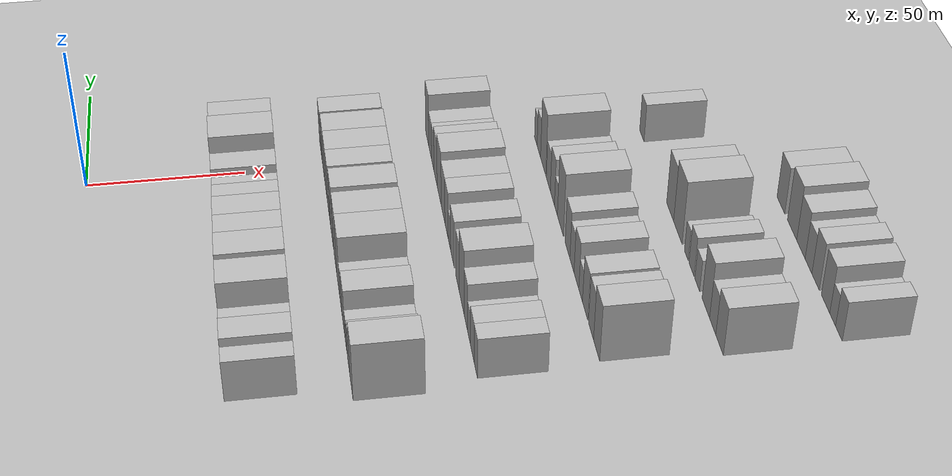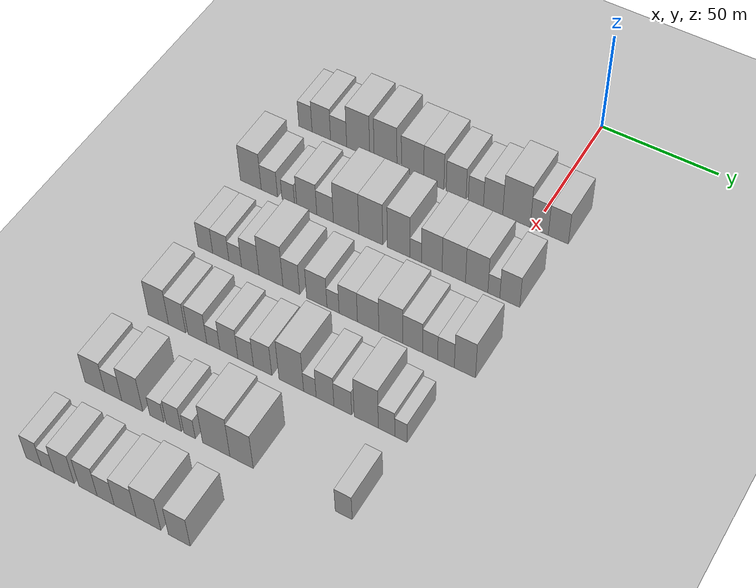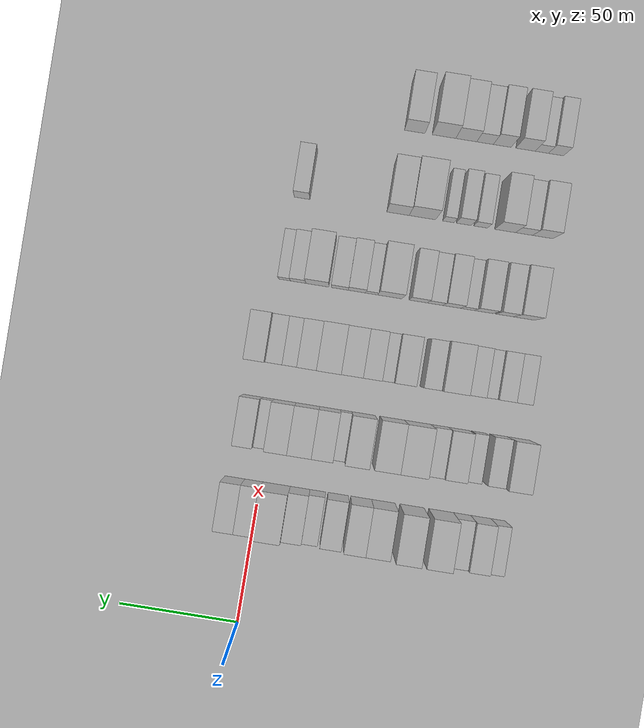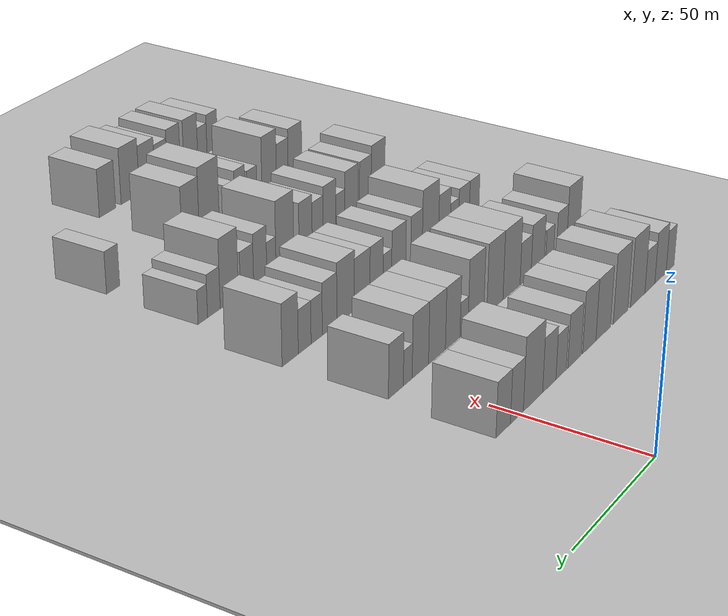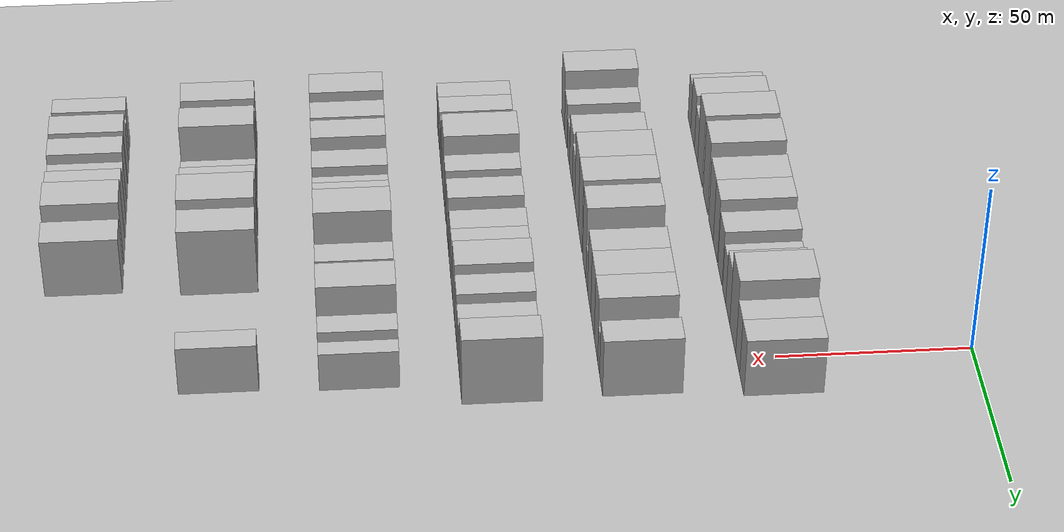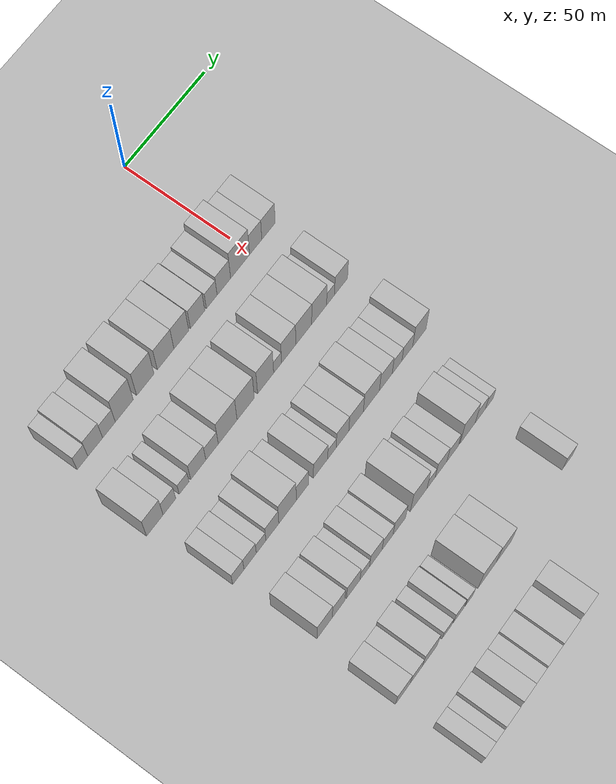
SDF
<sdf version="1.6">
 <world name="default">
  <include><name>ground_plane_1</name><uri>model://HANNAS_ground_plane</uri></include>
  <include>
   <name>ground_plane_2</name>
   <uri>model://HANNAS_ground_plane</uri>
   <pose>100 0 0  0 0 0</pose>
  </include>
  <model name="building_51">
   <static>1</static>
   <pose>50.0000 -100.9909 0 0.000000 0.000000 0.000000</pose>
   <link name="link">
    <pose>0 0 7.50 0 0 0</pose>
    <collision name="collision"><geometry><box><size>20.0000 6.1518 15.0000</size></box></geometry></collision>
    <visual name="visual">
     <cast_shadows>0</cast_shadows>
     <geometry><box><size>20.0000 6.1518 15.0000</size></box></geometry>
     <material>
      <script>
       <uri>model://HANNAS_wall/materials/scripts</uri>
       <uri>model://HANNAS_wall/materials/textures</uri>
       <name>vrc/HANNAS_wall</name>
      </script>
     </material>
    </visual>
   </link>
  </model>
  <model name="building_52">
   <static>1</static>
   <pose>50.0000 -93.6376 0 0.000000 0.000000 0.000000</pose>
   <link name="link">
    <pose>0 0 9.00 0 0 0</pose>
    <collision name="collision"><geometry><box><size>20.0000 8.5547 18.0000</size></box></geometry></collision>
    <visual name="visual">
     <cast_shadows>0</cast_shadows>
     <geometry><box><size>20.0000 8.5547 18.0000</size></box></geometry>
     <material>
      <script>
       <uri>model://HANNAS_wall/materials/scripts</uri>
       <uri>model://HANNAS_wall/materials/textures</uri>
       <name>vrc/HANNAS_wall</name>
      </script>
     </material>
    </visual>
   </link>
  </model>
  <model name="building_53">
   <static>1</static>
   <pose>50.0000 -85.6595 0 0.000000 0.000000 0.000000</pose>
   <link name="link">
    <pose>0 0 7.50 0 0 0</pose>
    <collision name="collision"><geometry><box><size>20.0000 7.4015 15.0000</size></box></geometry></collision>
    <visual name="visual">
     <cast_shadows>0</cast_shadows>
     <geometry><box><size>20.0000 7.4015 15.0000</size></box></geometry>
     <material>
      <script>
       <uri>model://HANNAS_wall/materials/scripts</uri>
       <uri>model://HANNAS_wall/materials/textures</uri>
       <name>vrc/HANNAS_wall</name>
      </script>
     </material>
    </visual>
   </link>
  </model>
  <model name="building_54">
   <static>1</static>
   <pose>50.0000 -76.7090 0 0.000000 0.000000 0.000000</pose>
   <link name="link">
    <pose>0 0 12.00 0 0 0</pose>
    <collision name="collision"><geometry><box><size>20.0000 10.4997 24.0000</size></box></geometry></collision>
    <visual name="visual">
     <cast_shadows>0</cast_shadows>
     <geometry><box><size>20.0000 10.4997 24.0000</size></box></geometry>
     <material>
      <script>
       <uri>model://HANNAS_wall/materials/scripts</uri>
       <uri>model://HANNAS_wall/materials/textures</uri>
       <name>vrc/HANNAS_wall</name>
      </script>
     </material>
    </visual>
   </link>
  </model>
  <model name="building_55">
   <static>1</static>
   <pose>50.0000 -64.3393 0 0.000000 0.000000 0.000000</pose>
   <link name="link">
    <pose>0 0 12.00 0 0 0</pose>
    <collision name="collision"><geometry><box><size>20.0000 10.2397 24.0000</size></box></geometry></collision>
    <visual name="visual">
     <cast_shadows>0</cast_shadows>
     <geometry><box><size>20.0000 10.2397 24.0000</size></box></geometry>
     <material>
      <script>
       <uri>model://HANNAS_wall/materials/scripts</uri>
       <uri>model://HANNAS_wall/materials/textures</uri>
       <name>vrc/HANNAS_wall</name>
      </script>
     </material>
    </visual>
   </link>
  </model>
  <model name="building_56">
   <static>1</static>
   <pose>50.0000 -52.2543 0 0.000000 0.000000 0.000000</pose>
   <link name="link">
    <pose>0 0 10.50 0 0 0</pose>
    <collision name="collision"><geometry><box><size>20.0000 9.9302 21.0000</size></box></geometry></collision>
    <visual name="visual">
     <cast_shadows>0</cast_shadows>
     <geometry><box><size>20.0000 9.9302 21.0000</size></box></geometry>
     <material>
      <script>
       <uri>model://HANNAS_wall/materials/scripts</uri>
       <uri>model://HANNAS_wall/materials/textures</uri>
       <name>vrc/HANNAS_wall</name>
      </script>
     </material>
    </visual>
   </link>
  </model>
  <model name="building_57">
   <static>1</static>
   <pose>50.0000 -42.8495 0 0.000000 0.000000 0.000000</pose>
   <link name="link">
    <pose>0 0 10.50 0 0 0</pose>
    <collision name="collision"><geometry><box><size>20.0000 8.8794 21.0000</size></box></geometry></collision>
    <visual name="visual">
     <cast_shadows>0</cast_shadows>
     <geometry><box><size>20.0000 8.8794 21.0000</size></box></geometry>
     <material>
      <script>
       <uri>model://HANNAS_wall/materials/scripts</uri>
       <uri>model://HANNAS_wall/materials/textures</uri>
       <name>vrc/HANNAS_wall</name>
      </script>
     </material>
    </visual>
   </link>
  </model>
  <model name="building_58">
   <static>1</static>
   <pose>50.0000 -33.0597 0 0.000000 0.000000 0.000000</pose>
   <link name="link">
    <pose>0 0 9.00 0 0 0</pose>
    <collision name="collision"><geometry><box><size>20.0000 8.7003 18.0000</size></box></geometry></collision>
    <visual name="visual">
     <cast_shadows>0</cast_shadows>
     <geometry><box><size>20.0000 8.7003 18.0000</size></box></geometry>
     <material>
      <script>
       <uri>model://HANNAS_wall/materials/scripts</uri>
       <uri>model://HANNAS_wall/materials/textures</uri>
       <name>vrc/HANNAS_wall</name>
      </script>
     </material>
    </visual>
   </link>
  </model>
  <model name="building_59">
   <static>1</static>
   <pose>50.0000 -24.4316 0 0.000000 0.000000 0.000000</pose>
   <link name="link">
    <pose>0 0 7.50 0 0 0</pose>
    <collision name="collision"><geometry><box><size>20.0000 6.5559 15.0000</size></box></geometry></collision>
    <visual name="visual">
     <cast_shadows>0</cast_shadows>
     <geometry><box><size>20.0000 6.5559 15.0000</size></box></geometry>
     <material>
      <script>
       <uri>model://HANNAS_wall/materials/scripts</uri>
       <uri>model://HANNAS_wall/materials/textures</uri>
       <name>vrc/HANNAS_wall</name>
      </script>
     </material>
    </visual>
   </link>
  </model>
  <model name="building_60">
   <static>1</static>
   <pose>50.0000 -17.0000 0 0.000000 0.000000 0.000000</pose>
   <link name="link">
    <pose>0 0 9.00 0 0 0</pose>
    <collision name="collision"><geometry><box><size>20.0000 8.3073 18.0000</size></box></geometry></collision>
    <visual name="visual">
     <cast_shadows>0</cast_shadows>
     <geometry><box><size>20.0000 8.3073 18.0000</size></box></geometry>
     <material>
      <script>
       <uri>model://HANNAS_wall/materials/scripts</uri>
       <uri>model://HANNAS_wall/materials/textures</uri>
       <name>vrc/HANNAS_wall</name>
      </script>
     </material>
    </visual>
   </link>
  </model>
  <model name="building_61">
   <static>1</static>
   <pose>50.0000 -6.9831 0 0.000000 0.000000 0.000000</pose>
   <link name="link">
    <pose>0 0 12.00 0 0 0</pose>
    <collision name="collision"><geometry><box><size>20.0000 11.7265 24.0000</size></box></geometry></collision>
    <visual name="visual">
     <cast_shadows>0</cast_shadows>
     <geometry><box><size>20.0000 11.7265 24.0000</size></box></geometry>
     <material>
      <script>
       <uri>model://HANNAS_wall/materials/scripts</uri>
       <uri>model://HANNAS_wall/materials/textures</uri>
       <name>vrc/HANNAS_wall</name>
      </script>
     </material>
    </visual>
   </link>
  </model>
  <model name="building_62">
   <static>1</static>
   <pose>50.0000 2.6950 0 0.000000 0.000000 0.000000</pose>
   <link name="link">
    <pose>0 0 9.00 0 0 0</pose>
    <collision name="collision"><geometry><box><size>20.0000 7.6295 18.0000</size></box></geometry></collision>
    <visual name="visual">
     <cast_shadows>0</cast_shadows>
     <geometry><box><size>20.0000 7.6295 18.0000</size></box></geometry>
     <material>
      <script>
       <uri>model://HANNAS_wall/materials/scripts</uri>
       <uri>model://HANNAS_wall/materials/textures</uri>
       <name>vrc/HANNAS_wall</name>
      </script>
     </material>
    </visual>
   </link>
  </model>
  <model name="building_63">
   <static>1</static>
   <pose>50.0000 10.7065 0 0.000000 0.000000 0.000000</pose>
   <link name="link">
    <pose>0 0 9.00 0 0 0</pose>
    <collision name="collision"><geometry><box><size>20.0000 8.3934 18.0000</size></box></geometry></collision>
    <visual name="visual">
     <cast_shadows>0</cast_shadows>
     <geometry><box><size>20.0000 8.3934 18.0000</size></box></geometry>
     <material>
      <script>
       <uri>model://HANNAS_wall/materials/scripts</uri>
       <uri>model://HANNAS_wall/materials/textures</uri>
       <name>vrc/HANNAS_wall</name>
      </script>
     </material>
    </visual>
   </link>
  </model>
  <model name="building_169">
   <static>1</static>
   <pose>85.0000 -103.8853 0 0.000000 0.000000 0.000000</pose>
   <link name="link">
    <pose>0 0 10.50 0 0 0</pose>
    <collision name="collision"><geometry><box><size>20.0000 9.5341 21.0000</size></box></geometry></collision>
    <visual name="visual">
     <cast_shadows>0</cast_shadows>
     <geometry><box><size>20.0000 9.5341 21.0000</size></box></geometry>
     <material>
      <script>
       <uri>model://HANNAS_wall/materials/scripts</uri>
       <uri>model://HANNAS_wall/materials/textures</uri>
       <name>vrc/HANNAS_wall</name>
      </script>
     </material>
    </visual>
   </link>
  </model>
  <model name="building_170">
   <static>1</static>
   <pose>85.0000 -95.4093 0 0.000000 0.000000 0.000000</pose>
   <link name="link">
    <pose>0 0 7.50 0 0 0</pose>
    <collision name="collision"><geometry><box><size>20.0000 7.4179 15.0000</size></box></geometry></collision>
    <visual name="visual">
     <cast_shadows>0</cast_shadows>
     <geometry><box><size>20.0000 7.4179 15.0000</size></box></geometry>
     <material>
      <script>
       <uri>model://HANNAS_wall/materials/scripts</uri>
       <uri>model://HANNAS_wall/materials/textures</uri>
       <name>vrc/HANNAS_wall</name>
      </script>
     </material>
    </visual>
   </link>
  </model>
  <model name="building_171">
   <static>1</static>
   <pose>85.0000 -86.8572 0 0.000000 0.000000 0.000000</pose>
   <link name="link">
    <pose>0 0 6.00 0 0 0</pose>
    <collision name="collision"><geometry><box><size>20.0000 5.6863 12.0000</size></box></geometry></collision>
    <visual name="visual">
     <cast_shadows>0</cast_shadows>
     <geometry><box><size>20.0000 5.6863 12.0000</size></box></geometry>
     <material>
      <script>
       <uri>model://HANNAS_wall/materials/scripts</uri>
       <uri>model://HANNAS_wall/materials/textures</uri>
       <name>vrc/HANNAS_wall</name>
      </script>
     </material>
    </visual>
   </link>
  </model>
  <model name="building_172">
   <static>1</static>
   <pose>85.0000 -78.5305 0 0.000000 0.000000 0.000000</pose>
   <link name="link">
    <pose>0 0 9.00 0 0 0</pose>
    <collision name="collision"><geometry><box><size>20.0000 8.9672 18.0000</size></box></geometry></collision>
    <visual name="visual">
     <cast_shadows>0</cast_shadows>
     <geometry><box><size>20.0000 8.9672 18.0000</size></box></geometry>
     <material>
      <script>
       <uri>model://HANNAS_wall/materials/scripts</uri>
       <uri>model://HANNAS_wall/materials/textures</uri>
       <name>vrc/HANNAS_wall</name>
      </script>
     </material>
    </visual>
   </link>
  </model>
  <model name="building_173">
   <static>1</static>
   <pose>85.0000 -70.3578 0 0.000000 0.000000 0.000000</pose>
   <link name="link">
    <pose>0 0 7.50 0 0 0</pose>
    <collision name="collision"><geometry><box><size>20.0000 7.3783 15.0000</size></box></geometry></collision>
    <visual name="visual">
     <cast_shadows>0</cast_shadows>
     <geometry><box><size>20.0000 7.3783 15.0000</size></box></geometry>
     <material>
      <script>
       <uri>model://HANNAS_wall/materials/scripts</uri>
       <uri>model://HANNAS_wall/materials/textures</uri>
       <name>vrc/HANNAS_wall</name>
      </script>
     </material>
    </visual>
   </link>
  </model>
  <model name="building_174">
   <static>1</static>
   <pose>85.0000 -61.0500 0 0.000000 0.000000 0.000000</pose>
   <link name="link">
    <pose>0 0 12.00 0 0 0</pose>
    <collision name="collision"><geometry><box><size>20.0000 11.2374 24.0000</size></box></geometry></collision>
    <visual name="visual">
     <cast_shadows>0</cast_shadows>
     <geometry><box><size>20.0000 11.2374 24.0000</size></box></geometry>
     <material>
      <script>
       <uri>model://HANNAS_wall/materials/scripts</uri>
       <uri>model://HANNAS_wall/materials/textures</uri>
       <name>vrc/HANNAS_wall</name>
      </script>
     </material>
    </visual>
   </link>
  </model>
  <model name="building_175">
   <static>1</static>
   <pose>85.0000 -50.2451 0 0.000000 0.000000 0.000000</pose>
   <link name="link">
    <pose>0 0 12.00 0 0 0</pose>
    <collision name="collision"><geometry><box><size>20.0000 10.3722 24.0000</size></box></geometry></collision>
    <visual name="visual">
     <cast_shadows>0</cast_shadows>
     <geometry><box><size>20.0000 10.3722 24.0000</size></box></geometry>
     <material>
      <script>
       <uri>model://HANNAS_wall/materials/scripts</uri>
       <uri>model://HANNAS_wall/materials/textures</uri>
       <name>vrc/HANNAS_wall</name>
      </script>
     </material>
    </visual>
   </link>
  </model>
  <model name="building_176">
   <static>1</static>
   <pose>85.0000 -38.1732 0 0.000000 0.000000 0.000000</pose>
   <link name="link">
    <pose>0 0 12.00 0 0 0</pose>
    <collision name="collision"><geometry><box><size>20.0000 9.7717 24.0000</size></box></geometry></collision>
    <visual name="visual">
     <cast_shadows>0</cast_shadows>
     <geometry><box><size>20.0000 9.7717 24.0000</size></box></geometry>
     <material>
      <script>
       <uri>model://HANNAS_wall/materials/scripts</uri>
       <uri>model://HANNAS_wall/materials/textures</uri>
       <name>vrc/HANNAS_wall</name>
      </script>
     </material>
    </visual>
   </link>
  </model>
  <model name="building_177">
   <static>1</static>
   <pose>85.0000 -30.8726 0 0.000000 0.000000 0.000000</pose>
   <link name="link">
    <pose>0 0 6.00 0 0 0</pose>
    <collision name="collision"><geometry><box><size>20.0000 4.8294 12.0000</size></box></geometry></collision>
    <visual name="visual">
     <cast_shadows>0</cast_shadows>
     <geometry><box><size>20.0000 4.8294 12.0000</size></box></geometry>
     <material>
      <script>
       <uri>model://HANNAS_wall/materials/scripts</uri>
       <uri>model://HANNAS_wall/materials/textures</uri>
       <name>vrc/HANNAS_wall</name>
      </script>
     </material>
    </visual>
   </link>
  </model>
  <model name="building_178">
   <static>1</static>
   <pose>85.0000 -24.0676 0 0.000000 0.000000 0.000000</pose>
   <link name="link">
    <pose>0 0 10.50 0 0 0</pose>
    <collision name="collision"><geometry><box><size>20.0000 8.7806 21.0000</size></box></geometry></collision>
    <visual name="visual">
     <cast_shadows>0</cast_shadows>
     <geometry><box><size>20.0000 8.7806 21.0000</size></box></geometry>
     <material>
      <script>
       <uri>model://HANNAS_wall/materials/scripts</uri>
       <uri>model://HANNAS_wall/materials/textures</uri>
       <name>vrc/HANNAS_wall</name>
      </script>
     </material>
    </visual>
   </link>
  </model>
  <model name="building_179">
   <static>1</static>
   <pose>85.0000 -14.7382 0 0.000000 0.000000 0.000000</pose>
   <link name="link">
    <pose>0 0 10.50 0 0 0</pose>
    <collision name="collision"><geometry><box><size>20.0000 9.8781 21.0000</size></box></geometry></collision>
    <visual name="visual">
     <cast_shadows>0</cast_shadows>
     <geometry><box><size>20.0000 9.8781 21.0000</size></box></geometry>
     <material>
      <script>
       <uri>model://HANNAS_wall/materials/scripts</uri>
       <uri>model://HANNAS_wall/materials/textures</uri>
       <name>vrc/HANNAS_wall</name>
      </script>
     </material>
    </visual>
   </link>
  </model>
  <model name="building_180">
   <static>1</static>
   <pose>85.0000 -5.1304 0 0.000000 0.000000 0.000000</pose>
   <link name="link">
    <pose>0 0 10.50 0 0 0</pose>
    <collision name="collision"><geometry><box><size>20.0000 9.3377 21.0000</size></box></geometry></collision>
    <visual name="visual">
     <cast_shadows>0</cast_shadows>
     <geometry><box><size>20.0000 9.3377 21.0000</size></box></geometry>
     <material>
      <script>
       <uri>model://HANNAS_wall/materials/scripts</uri>
       <uri>model://HANNAS_wall/materials/textures</uri>
       <name>vrc/HANNAS_wall</name>
      </script>
     </material>
    </visual>
   </link>
  </model>
  <model name="building_181">
   <static>1</static>
   <pose>85.0000 2.0110 0 0.000000 0.000000 0.000000</pose>
   <link name="link">
    <pose>0 0 6.00 0 0 0</pose>
    <collision name="collision"><geometry><box><size>20.0000 4.9450 12.0000</size></box></geometry></collision>
    <visual name="visual">
     <cast_shadows>0</cast_shadows>
     <geometry><box><size>20.0000 4.9450 12.0000</size></box></geometry>
     <material>
      <script>
       <uri>model://HANNAS_wall/materials/scripts</uri>
       <uri>model://HANNAS_wall/materials/textures</uri>
       <name>vrc/HANNAS_wall</name>
      </script>
     </material>
    </visual>
   </link>
  </model>
  <model name="building_182">
   <static>1</static>
   <pose>85.0000 8.6003 0 0.000000 0.000000 0.000000</pose>
   <link name="link">
    <pose>0 0 9.00 0 0 0</pose>
    <collision name="collision"><geometry><box><size>20.0000 8.2335 18.0000</size></box></geometry></collision>
    <visual name="visual">
     <cast_shadows>0</cast_shadows>
     <geometry><box><size>20.0000 8.2335 18.0000</size></box></geometry>
     <material>
      <script>
       <uri>model://HANNAS_wall/materials/scripts</uri>
       <uri>model://HANNAS_wall/materials/textures</uri>
       <name>vrc/HANNAS_wall</name>
      </script>
     </material>
    </visual>
   </link>
  </model>
  <model name="building_296">
   <static>1</static>
   <pose>120.0000 -101.2806 0 0.000000 0.000000 0.000000</pose>
   <link name="link">
    <pose>0 0 7.50 0 0 0</pose>
    <collision name="collision"><geometry><box><size>20.0000 6.6207 15.0000</size></box></geometry></collision>
    <visual name="visual">
     <cast_shadows>0</cast_shadows>
     <geometry><box><size>20.0000 6.6207 15.0000</size></box></geometry>
     <material>
      <script>
       <uri>model://HANNAS_wall/materials/scripts</uri>
       <uri>model://HANNAS_wall/materials/textures</uri>
       <name>vrc/HANNAS_wall</name>
      </script>
     </material>
    </visual>
   </link>
  </model>
  <model name="building_297">
   <static>1</static>
   <pose>120.0000 -94.3577 0 0.000000 0.000000 0.000000</pose>
   <link name="link">
    <pose>0 0 7.50 0 0 0</pose>
    <collision name="collision"><geometry><box><size>20.0000 7.2251 15.0000</size></box></geometry></collision>
    <visual name="visual">
     <cast_shadows>0</cast_shadows>
     <geometry><box><size>20.0000 7.2251 15.0000</size></box></geometry>
     <material>
      <script>
       <uri>model://HANNAS_wall/materials/scripts</uri>
       <uri>model://HANNAS_wall/materials/textures</uri>
       <name>vrc/HANNAS_wall</name>
      </script>
     </material>
    </visual>
   </link>
  </model>
  <model name="building_298">
   <static>1</static>
   <pose>120.0000 -87.9397 0 0.000000 0.000000 0.000000</pose>
   <link name="link">
    <pose>0 0 6.00 0 0 0</pose>
    <collision name="collision"><geometry><box><size>20.0000 5.6108 12.0000</size></box></geometry></collision>
    <visual name="visual">
     <cast_shadows>0</cast_shadows>
     <geometry><box><size>20.0000 5.6108 12.0000</size></box></geometry>
     <material>
      <script>
       <uri>model://HANNAS_wall/materials/scripts</uri>
       <uri>model://HANNAS_wall/materials/textures</uri>
       <name>vrc/HANNAS_wall</name>
      </script>
     </material>
    </visual>
   </link>
  </model>
  <model name="building_299">
   <static>1</static>
   <pose>120.0000 -81.2918 0 0.000000 0.000000 0.000000</pose>
   <link name="link">
    <pose>0 0 9.00 0 0 0</pose>
    <collision name="collision"><geometry><box><size>20.0000 7.6850 18.0000</size></box></geometry></collision>
    <visual name="visual">
     <cast_shadows>0</cast_shadows>
     <geometry><box><size>20.0000 7.6850 18.0000</size></box></geometry>
     <material>
      <script>
       <uri>model://HANNAS_wall/materials/scripts</uri>
       <uri>model://HANNAS_wall/materials/textures</uri>
       <name>vrc/HANNAS_wall</name>
      </script>
     </material>
    </visual>
   </link>
  </model>
  <model name="building_300">
   <static>1</static>
   <pose>120.0000 -72.2149 0 0.000000 0.000000 0.000000</pose>
   <link name="link">
    <pose>0 0 12.00 0 0 0</pose>
    <collision name="collision"><geometry><box><size>20.0000 10.4690 24.0000</size></box></geometry></collision>
    <visual name="visual">
     <cast_shadows>0</cast_shadows>
     <geometry><box><size>20.0000 10.4690 24.0000</size></box></geometry>
     <material>
      <script>
       <uri>model://HANNAS_wall/materials/scripts</uri>
       <uri>model://HANNAS_wall/materials/textures</uri>
       <name>vrc/HANNAS_wall</name>
      </script>
     </material>
    </visual>
   </link>
  </model>
  <model name="building_301">
   <static>1</static>
   <pose>120.0000 -63.3494 0 0.000000 0.000000 0.000000</pose>
   <link name="link">
    <pose>0 0 9.00 0 0 0</pose>
    <collision name="collision"><geometry><box><size>20.0000 7.2619 18.0000</size></box></geometry></collision>
    <visual name="visual">
     <cast_shadows>0</cast_shadows>
     <geometry><box><size>20.0000 7.2619 18.0000</size></box></geometry>
     <material>
      <script>
       <uri>model://HANNAS_wall/materials/scripts</uri>
       <uri>model://HANNAS_wall/materials/textures</uri>
       <name>vrc/HANNAS_wall</name>
      </script>
     </material>
    </visual>
   </link>
  </model>
  <model name="building_302">
   <static>1</static>
   <pose>120.0000 -52.3753 0 0.000000 0.000000 0.000000</pose>
   <link name="link">
    <pose>0 0 9.00 0 0 0</pose>
    <collision name="collision"><geometry><box><size>20.0000 8.6864 18.0000</size></box></geometry></collision>
    <visual name="visual">
     <cast_shadows>0</cast_shadows>
     <geometry><box><size>20.0000 8.6864 18.0000</size></box></geometry>
     <material>
      <script>
       <uri>model://HANNAS_wall/materials/scripts</uri>
       <uri>model://HANNAS_wall/materials/textures</uri>
       <name>vrc/HANNAS_wall</name>
      </script>
     </material>
    </visual>
   </link>
  </model>
  <model name="building_303">
   <static>1</static>
   <pose>120.0000 -45.4453 0 0.000000 0.000000 0.000000</pose>
   <link name="link">
    <pose>0 0 6.00 0 0 0</pose>
    <collision name="collision"><geometry><box><size>20.0000 5.1736 12.0000</size></box></geometry></collision>
    <visual name="visual">
     <cast_shadows>0</cast_shadows>
     <geometry><box><size>20.0000 5.1736 12.0000</size></box></geometry>
     <material>
      <script>
       <uri>model://HANNAS_wall/materials/scripts</uri>
       <uri>model://HANNAS_wall/materials/textures</uri>
       <name>vrc/HANNAS_wall</name>
      </script>
     </material>
    </visual>
   </link>
  </model>
  <model name="building_304">
   <static>1</static>
   <pose>120.0000 -38.9880 0 0.000000 0.000000 0.000000</pose>
   <link name="link">
    <pose>0 0 9.00 0 0 0</pose>
    <collision name="collision"><geometry><box><size>20.0000 7.7408 18.0000</size></box></geometry></collision>
    <visual name="visual">
     <cast_shadows>0</cast_shadows>
     <geometry><box><size>20.0000 7.7408 18.0000</size></box></geometry>
     <material>
      <script>
       <uri>model://HANNAS_wall/materials/scripts</uri>
       <uri>model://HANNAS_wall/materials/textures</uri>
       <name>vrc/HANNAS_wall</name>
      </script>
     </material>
    </visual>
   </link>
  </model>
  <model name="building_305">
   <static>1</static>
   <pose>120.0000 -30.6281 0 0.000000 0.000000 0.000000</pose>
   <link name="link">
    <pose>0 0 9.00 0 0 0</pose>
    <collision name="collision"><geometry><box><size>20.0000 8.9790 18.0000</size></box></geometry></collision>
    <visual name="visual">
     <cast_shadows>0</cast_shadows>
     <geometry><box><size>20.0000 8.9790 18.0000</size></box></geometry>
     <material>
      <script>
       <uri>model://HANNAS_wall/materials/scripts</uri>
       <uri>model://HANNAS_wall/materials/textures</uri>
       <name>vrc/HANNAS_wall</name>
      </script>
     </material>
    </visual>
   </link>
  </model>
  <model name="building_306">
   <static>1</static>
   <pose>120.0000 -21.1370 0 0.000000 0.000000 0.000000</pose>
   <link name="link">
    <pose>0 0 10.50 0 0 0</pose>
    <collision name="collision"><geometry><box><size>20.0000 10.0032 21.0000</size></box></geometry></collision>
    <visual name="visual">
     <cast_shadows>0</cast_shadows>
     <geometry><box><size>20.0000 10.0032 21.0000</size></box></geometry>
     <material>
      <script>
       <uri>model://HANNAS_wall/materials/scripts</uri>
       <uri>model://HANNAS_wall/materials/textures</uri>
       <name>vrc/HANNAS_wall</name>
      </script>
     </material>
    </visual>
   </link>
  </model>
  <model name="building_307">
   <static>1</static>
   <pose>120.0000 -12.1063 0 0.000000 0.000000 0.000000</pose>
   <link name="link">
    <pose>0 0 9.00 0 0 0</pose>
    <collision name="collision"><geometry><box><size>20.0000 8.0583 18.0000</size></box></geometry></collision>
    <visual name="visual">
     <cast_shadows>0</cast_shadows>
     <geometry><box><size>20.0000 8.0583 18.0000</size></box></geometry>
     <material>
      <script>
       <uri>model://HANNAS_wall/materials/scripts</uri>
       <uri>model://HANNAS_wall/materials/textures</uri>
       <name>vrc/HANNAS_wall</name>
      </script>
     </material>
    </visual>
   </link>
  </model>
  <model name="building_308">
   <static>1</static>
   <pose>120.0000 -5.0167 0 0.000000 0.000000 0.000000</pose>
   <link name="link">
    <pose>0 0 7.50 0 0 0</pose>
    <collision name="collision"><geometry><box><size>20.0000 6.1208 15.0000</size></box></geometry></collision>
    <visual name="visual">
     <cast_shadows>0</cast_shadows>
     <geometry><box><size>20.0000 6.1208 15.0000</size></box></geometry>
     <material>
      <script>
       <uri>model://HANNAS_wall/materials/scripts</uri>
       <uri>model://HANNAS_wall/materials/textures</uri>
       <name>vrc/HANNAS_wall</name>
      </script>
     </material>
    </visual>
   </link>
  </model>
  <model name="building_309">
   <static>1</static>
   <pose>120.0000 1.4541 0 0.000000 0.000000 0.000000</pose>
   <link name="link">
    <pose>0 0 7.50 0 0 0</pose>
    <collision name="collision"><geometry><box><size>20.0000 6.8208 15.0000</size></box></geometry></collision>
    <visual name="visual">
     <cast_shadows>0</cast_shadows>
     <geometry><box><size>20.0000 6.8208 15.0000</size></box></geometry>
     <material>
      <script>
       <uri>model://HANNAS_wall/materials/scripts</uri>
       <uri>model://HANNAS_wall/materials/textures</uri>
       <name>vrc/HANNAS_wall</name>
      </script>
     </material>
    </visual>
   </link>
  </model>
  <model name="building_310">
   <static>1</static>
   <pose>120.0000 9.1213 0 0.000000 0.000000 0.000000</pose>
   <link name="link">
    <pose>0 0 10.50 0 0 0</pose>
    <collision name="collision"><geometry><box><size>20.0000 8.5137 21.0000</size></box></geometry></collision>
    <visual name="visual">
     <cast_shadows>0</cast_shadows>
     <geometry><box><size>20.0000 8.5137 21.0000</size></box></geometry>
     <material>
      <script>
       <uri>model://HANNAS_wall/materials/scripts</uri>
       <uri>model://HANNAS_wall/materials/textures</uri>
       <name>vrc/HANNAS_wall</name>
      </script>
     </material>
    </visual>
   </link>
  </model>
  <model name="building_420">
   <static>1</static>
   <pose>155.0000 -98.0827 0 0.000000 0.000000 0.000000</pose>
   <link name="link">
    <pose>0 0 10.50 0 0 0</pose>
    <collision name="collision"><geometry><box><size>20.0000 8.9625 21.0000</size></box></geometry></collision>
    <visual name="visual">
     <cast_shadows>0</cast_shadows>
     <geometry><box><size>20.0000 8.9625 21.0000</size></box></geometry>
     <material>
      <script>
       <uri>model://HANNAS_wall/materials/scripts</uri>
       <uri>model://HANNAS_wall/materials/textures</uri>
       <name>vrc/HANNAS_wall</name>
      </script>
     </material>
    </visual>
   </link>
  </model>
  <model name="building_421">
   <static>1</static>
   <pose>155.0000 -89.8655 0 0.000000 0.000000 0.000000</pose>
   <link name="link">
    <pose>0 0 9.00 0 0 0</pose>
    <collision name="collision"><geometry><box><size>20.0000 7.4720 18.0000</size></box></geometry></collision>
    <visual name="visual">
     <cast_shadows>0</cast_shadows>
     <geometry><box><size>20.0000 7.4720 18.0000</size></box></geometry>
     <material>
      <script>
       <uri>model://HANNAS_wall/materials/scripts</uri>
       <uri>model://HANNAS_wall/materials/textures</uri>
       <name>vrc/HANNAS_wall</name>
      </script>
     </material>
    </visual>
   </link>
  </model>
  <model name="building_422">
   <static>1</static>
   <pose>155.0000 -81.0679 0 0.000000 0.000000 0.000000</pose>
   <link name="link">
    <pose>0 0 9.00 0 0 0</pose>
    <collision name="collision"><geometry><box><size>20.0000 8.1231 18.0000</size></box></geometry></collision>
    <visual name="visual">
     <cast_shadows>0</cast_shadows>
     <geometry><box><size>20.0000 8.1231 18.0000</size></box></geometry>
     <material>
      <script>
       <uri>model://HANNAS_wall/materials/scripts</uri>
       <uri>model://HANNAS_wall/materials/textures</uri>
       <name>vrc/HANNAS_wall</name>
      </script>
     </material>
    </visual>
   </link>
  </model>
  <model name="building_423">
   <static>1</static>
   <pose>155.0000 -74.1770 0 0.000000 0.000000 0.000000</pose>
   <link name="link">
    <pose>0 0 6.00 0 0 0</pose>
    <collision name="collision"><geometry><box><size>20.0000 5.6588 12.0000</size></box></geometry></collision>
    <visual name="visual">
     <cast_shadows>0</cast_shadows>
     <geometry><box><size>20.0000 5.6588 12.0000</size></box></geometry>
     <material>
      <script>
       <uri>model://HANNAS_wall/materials/scripts</uri>
       <uri>model://HANNAS_wall/materials/textures</uri>
       <name>vrc/HANNAS_wall</name>
      </script>
     </material>
    </visual>
   </link>
  </model>
  <model name="building_424">
   <static>1</static>
   <pose>155.0000 -67.5243 0 0.000000 0.000000 0.000000</pose>
   <link name="link">
    <pose>0 0 9.00 0 0 0</pose>
    <collision name="collision"><geometry><box><size>20.0000 7.6466 18.0000</size></box></geometry></collision>
    <visual name="visual">
     <cast_shadows>0</cast_shadows>
     <geometry><box><size>20.0000 7.6466 18.0000</size></box></geometry>
     <material>
      <script>
       <uri>model://HANNAS_wall/materials/scripts</uri>
       <uri>model://HANNAS_wall/materials/textures</uri>
       <name>vrc/HANNAS_wall</name>
      </script>
     </material>
    </visual>
   </link>
  </model>
  <model name="building_425">
   <static>1</static>
   <pose>155.0000 -60.3936 0 0.000000 0.000000 0.000000</pose>
   <link name="link">
    <pose>0 0 7.50 0 0 0</pose>
    <collision name="collision"><geometry><box><size>20.0000 6.6148 15.0000</size></box></geometry></collision>
    <visual name="visual">
     <cast_shadows>0</cast_shadows>
     <geometry><box><size>20.0000 6.6148 15.0000</size></box></geometry>
     <material>
      <script>
       <uri>model://HANNAS_wall/materials/scripts</uri>
       <uri>model://HANNAS_wall/materials/textures</uri>
       <name>vrc/HANNAS_wall</name>
      </script>
     </material>
    </visual>
   </link>
  </model>
  <model name="building_426">
   <static>1</static>
   <pose>155.0000 -53.2218 0 0.000000 0.000000 0.000000</pose>
   <link name="link">
    <pose>0 0 9.00 0 0 0</pose>
    <collision name="collision"><geometry><box><size>20.0000 7.7288 18.0000</size></box></geometry></collision>
    <visual name="visual">
     <cast_shadows>0</cast_shadows>
     <geometry><box><size>20.0000 7.7288 18.0000</size></box></geometry>
     <material>
      <script>
       <uri>model://HANNAS_wall/materials/scripts</uri>
       <uri>model://HANNAS_wall/materials/textures</uri>
       <name>vrc/HANNAS_wall</name>
      </script>
     </material>
    </visual>
   </link>
  </model>
  <model name="building_427">
   <static>1</static>
   <pose>155.0000 -41.2454 0 0.000000 0.000000 0.000000</pose>
   <link name="link">
    <pose>0 0 12.00 0 0 0</pose>
    <collision name="collision"><geometry><box><size>20.0000 10.2241 24.0000</size></box></geometry></collision>
    <visual name="visual">
     <cast_shadows>0</cast_shadows>
     <geometry><box><size>20.0000 10.2241 24.0000</size></box></geometry>
     <material>
      <script>
       <uri>model://HANNAS_wall/materials/scripts</uri>
       <uri>model://HANNAS_wall/materials/textures</uri>
       <name>vrc/HANNAS_wall</name>
      </script>
     </material>
    </visual>
   </link>
  </model>
  <model name="building_428">
   <static>1</static>
   <pose>155.0000 -33.5554 0 0.000000 0.000000 0.000000</pose>
   <link name="link">
    <pose>0 0 6.00 0 0 0</pose>
    <collision name="collision"><geometry><box><size>20.0000 5.1559 12.0000</size></box></geometry></collision>
    <visual name="visual">
     <cast_shadows>0</cast_shadows>
     <geometry><box><size>20.0000 5.1559 12.0000</size></box></geometry>
     <material>
      <script>
       <uri>model://HANNAS_wall/materials/scripts</uri>
       <uri>model://HANNAS_wall/materials/textures</uri>
       <name>vrc/HANNAS_wall</name>
      </script>
     </material>
    </visual>
   </link>
  </model>
  <model name="building_429">
   <static>1</static>
   <pose>155.0000 -27.3284 0 0.000000 0.000000 0.000000</pose>
   <link name="link">
    <pose>0 0 9.00 0 0 0</pose>
    <collision name="collision"><geometry><box><size>20.0000 7.2981 18.0000</size></box></geometry></collision>
    <visual name="visual">
     <cast_shadows>0</cast_shadows>
     <geometry><box><size>20.0000 7.2981 18.0000</size></box></geometry>
     <material>
      <script>
       <uri>model://HANNAS_wall/materials/scripts</uri>
       <uri>model://HANNAS_wall/materials/textures</uri>
       <name>vrc/HANNAS_wall</name>
      </script>
     </material>
    </visual>
   </link>
  </model>
  <model name="building_430">
   <static>1</static>
   <pose>155.0000 -20.0698 0 0.000000 0.000000 0.000000</pose>
   <link name="link">
    <pose>0 0 7.50 0 0 0</pose>
    <collision name="collision"><geometry><box><size>20.0000 7.2190 15.0000</size></box></geometry></collision>
    <visual name="visual">
     <cast_shadows>0</cast_shadows>
     <geometry><box><size>20.0000 7.2190 15.0000</size></box></geometry>
     <material>
      <script>
       <uri>model://HANNAS_wall/materials/scripts</uri>
       <uri>model://HANNAS_wall/materials/textures</uri>
       <name>vrc/HANNAS_wall</name>
      </script>
     </material>
    </visual>
   </link>
  </model>
  <model name="building_431">
   <static>1</static>
   <pose>155.0000 -10.6051 0 0.000000 0.000000 0.000000</pose>
   <link name="link">
    <pose>0 0 12.00 0 0 0</pose>
    <collision name="collision"><geometry><box><size>20.0000 9.7102 24.0000</size></box></geometry></collision>
    <visual name="visual">
     <cast_shadows>0</cast_shadows>
     <geometry><box><size>20.0000 9.7102 24.0000</size></box></geometry>
     <material>
      <script>
       <uri>model://HANNAS_wall/materials/scripts</uri>
       <uri>model://HANNAS_wall/materials/textures</uri>
       <name>vrc/HANNAS_wall</name>
      </script>
     </material>
    </visual>
   </link>
  </model>
  <model name="building_432">
   <static>1</static>
   <pose>155.0000 -2.4640 0 0.000000 0.000000 0.000000</pose>
   <link name="link">
    <pose>0 0 7.50 0 0 0</pose>
    <collision name="collision"><geometry><box><size>20.0000 6.5721 15.0000</size></box></geometry></collision>
    <visual name="visual">
     <cast_shadows>0</cast_shadows>
     <geometry><box><size>20.0000 6.5721 15.0000</size></box></geometry>
     <material>
      <script>
       <uri>model://HANNAS_wall/materials/scripts</uri>
       <uri>model://HANNAS_wall/materials/textures</uri>
       <name>vrc/HANNAS_wall</name>
      </script>
     </material>
    </visual>
   </link>
  </model>
  <model name="building_433">
   <static>1</static>
   <pose>155.0000 3.2681 0 0.000000 0.000000 0.000000</pose>
   <link name="link">
    <pose>0 0 6.00 0 0 0</pose>
    <collision name="collision"><geometry><box><size>20.0000 4.8920 12.0000</size></box></geometry></collision>
    <visual name="visual">
     <cast_shadows>0</cast_shadows>
     <geometry><box><size>20.0000 4.8920 12.0000</size></box></geometry>
     <material>
      <script>
       <uri>model://HANNAS_wall/materials/scripts</uri>
       <uri>model://HANNAS_wall/materials/textures</uri>
       <name>vrc/HANNAS_wall</name>
      </script>
     </material>
    </visual>
   </link>
  </model>
  <model name="building_552">
   <static>1</static>
   <pose>190.0000 -100.6493 0 0.000000 0.000000 0.000000</pose>
   <link name="link">
    <pose>0 0 9.00 0 0 0</pose>
    <collision name="collision"><geometry><box><size>20.0000 8.6584 18.0000</size></box></geometry></collision>
    <visual name="visual">
     <cast_shadows>0</cast_shadows>
     <geometry><box><size>20.0000 8.6584 18.0000</size></box></geometry>
     <material>
      <script>
       <uri>model://HANNAS_wall/materials/scripts</uri>
       <uri>model://HANNAS_wall/materials/textures</uri>
       <name>vrc/HANNAS_wall</name>
      </script>
     </material>
    </visual>
   </link>
  </model>
  <model name="building_553">
   <static>1</static>
   <pose>190.0000 -92.6987 0 0.000000 0.000000 0.000000</pose>
   <link name="link">
    <pose>0 0 7.50 0 0 0</pose>
    <collision name="collision"><geometry><box><size>20.0000 7.2426 15.0000</size></box></geometry></collision>
    <visual name="visual">
     <cast_shadows>0</cast_shadows>
     <geometry><box><size>20.0000 7.2426 15.0000</size></box></geometry>
     <material>
      <script>
       <uri>model://HANNAS_wall/materials/scripts</uri>
       <uri>model://HANNAS_wall/materials/textures</uri>
       <name>vrc/HANNAS_wall</name>
      </script>
     </material>
    </visual>
   </link>
  </model>
  <model name="building_554">
   <static>1</static>
   <pose>190.0000 -84.6218 0 0.000000 0.000000 0.000000</pose>
   <link name="link">
    <pose>0 0 10.50 0 0 0</pose>
    <collision name="collision"><geometry><box><size>20.0000 8.9112 21.0000</size></box></geometry></collision>
    <visual name="visual">
     <cast_shadows>0</cast_shadows>
     <geometry><box><size>20.0000 8.9112 21.0000</size></box></geometry>
     <material>
      <script>
       <uri>model://HANNAS_wall/materials/scripts</uri>
       <uri>model://HANNAS_wall/materials/textures</uri>
       <name>vrc/HANNAS_wall</name>
      </script>
     </material>
    </visual>
   </link>
  </model>
  <model name="building_555">
   <static>1</static>
   <pose>190.0000 -74.2213 0 0.000000 0.000000 0.000000</pose>
   <link name="link">
    <pose>0 0 6.00 0 0 0</pose>
    <collision name="collision"><geometry><box><size>20.0000 5.8899 12.0000</size></box></geometry></collision>
    <visual name="visual">
     <cast_shadows>0</cast_shadows>
     <geometry><box><size>20.0000 5.8899 12.0000</size></box></geometry>
     <material>
      <script>
       <uri>model://HANNAS_wall/materials/scripts</uri>
       <uri>model://HANNAS_wall/materials/textures</uri>
       <name>vrc/HANNAS_wall</name>
      </script>
     </material>
    </visual>
   </link>
  </model>
  <model name="building_556">
   <static>1</static>
   <pose>190.0000 -67.0859 0 0.000000 0.000000 0.000000</pose>
   <link name="link">
    <pose>0 0 7.50 0 0 0</pose>
    <collision name="collision"><geometry><box><size>20.0000 6.3808 15.0000</size></box></geometry></collision>
    <visual name="visual">
     <cast_shadows>0</cast_shadows>
     <geometry><box><size>20.0000 6.3808 15.0000</size></box></geometry>
     <material>
      <script>
       <uri>model://HANNAS_wall/materials/scripts</uri>
       <uri>model://HANNAS_wall/materials/textures</uri>
       <name>vrc/HANNAS_wall</name>
      </script>
     </material>
    </visual>
   </link>
  </model>
  <model name="building_557">
   <static>1</static>
   <pose>190.0000 -60.4951 0 0.000000 0.000000 0.000000</pose>
   <link name="link">
    <pose>0 0 6.00 0 0 0</pose>
    <collision name="collision"><geometry><box><size>20.0000 4.8008 12.0000</size></box></geometry></collision>
    <visual name="visual">
     <cast_shadows>0</cast_shadows>
     <geometry><box><size>20.0000 4.8008 12.0000</size></box></geometry>
     <material>
      <script>
       <uri>model://HANNAS_wall/materials/scripts</uri>
       <uri>model://HANNAS_wall/materials/textures</uri>
       <name>vrc/HANNAS_wall</name>
      </script>
     </material>
    </visual>
   </link>
  </model>
  <model name="building_558">
   <static>1</static>
   <pose>190.0000 -49.4840 0 0.000000 0.000000 0.000000</pose>
   <link name="link">
    <pose>0 0 12.00 0 0 0</pose>
    <collision name="collision"><geometry><box><size>20.0000 11.2214 24.0000</size></box></geometry></collision>
    <visual name="visual">
     <cast_shadows>0</cast_shadows>
     <geometry><box><size>20.0000 11.2214 24.0000</size></box></geometry>
     <material>
      <script>
       <uri>model://HANNAS_wall/materials/scripts</uri>
       <uri>model://HANNAS_wall/materials/textures</uri>
       <name>vrc/HANNAS_wall</name>
      </script>
     </material>
    </visual>
   </link>
  </model>
  <model name="building_559">
   <static>1</static>
   <pose>190.0000 -39.1347 0 0.000000 0.000000 0.000000</pose>
   <link name="link">
    <pose>0 0 10.50 0 0 0</pose>
    <collision name="collision"><geometry><box><size>20.0000 9.4772 21.0000</size></box></geometry></collision>
    <visual name="visual">
     <cast_shadows>0</cast_shadows>
     <geometry><box><size>20.0000 9.4772 21.0000</size></box></geometry>
     <material>
      <script>
       <uri>model://HANNAS_wall/materials/scripts</uri>
       <uri>model://HANNAS_wall/materials/textures</uri>
       <name>vrc/HANNAS_wall</name>
      </script>
     </material>
    </visual>
   </link>
  </model>
  <model name="building_560">
   <static>1</static>
   <pose>190.0000 1.4993 0 0.000000 0.000000 0.000000</pose>
   <link name="link">
    <pose>0 0 7.50 0 0 0</pose>
    <collision name="collision"><geometry><box><size>20.0000 6.5969 15.0000</size></box></geometry></collision>
    <visual name="visual">
     <cast_shadows>0</cast_shadows>
     <geometry><box><size>20.0000 6.5969 15.0000</size></box></geometry>
     <material>
      <script>
       <uri>model://HANNAS_wall/materials/scripts</uri>
       <uri>model://HANNAS_wall/materials/textures</uri>
       <name>vrc/HANNAS_wall</name>
      </script>
     </material>
    </visual>
   </link>
  </model>
  <model name="building_672">
   <static>1</static>
   <pose>225.0000 -100.6399 0 0.000000 0.000000 0.000000</pose>
   <link name="link">
    <pose>0 0 7.50 0 0 0</pose>
    <collision name="collision"><geometry><box><size>20.0000 6.4240 15.0000</size></box></geometry></collision>
    <visual name="visual">
     <cast_shadows>0</cast_shadows>
     <geometry><box><size>20.0000 6.4240 15.0000</size></box></geometry>
     <material>
      <script>
       <uri>model://HANNAS_wall/materials/scripts</uri>
       <uri>model://HANNAS_wall/materials/textures</uri>
       <name>vrc/HANNAS_wall</name>
      </script>
     </material>
    </visual>
   </link>
  </model>
  <model name="building_673">
   <static>1</static>
   <pose>225.0000 -94.6391 0 0.000000 0.000000 0.000000</pose>
   <link name="link">
    <pose>0 0 6.00 0 0 0</pose>
    <collision name="collision"><geometry><box><size>20.0000 5.5776 12.0000</size></box></geometry></collision>
    <visual name="visual">
     <cast_shadows>0</cast_shadows>
     <geometry><box><size>20.0000 5.5776 12.0000</size></box></geometry>
     <material>
      <script>
       <uri>model://HANNAS_wall/materials/scripts</uri>
       <uri>model://HANNAS_wall/materials/textures</uri>
       <name>vrc/HANNAS_wall</name>
      </script>
     </material>
    </visual>
   </link>
  </model>
  <model name="building_674">
   <static>1</static>
   <pose>225.0000 -87.6962 0 0.000000 0.000000 0.000000</pose>
   <link name="link">
    <pose>0 0 9.00 0 0 0</pose>
    <collision name="collision"><geometry><box><size>20.0000 8.3083 18.0000</size></box></geometry></collision>
    <visual name="visual">
     <cast_shadows>0</cast_shadows>
     <geometry><box><size>20.0000 8.3083 18.0000</size></box></geometry>
     <material>
      <script>
       <uri>model://HANNAS_wall/materials/scripts</uri>
       <uri>model://HANNAS_wall/materials/textures</uri>
       <name>vrc/HANNAS_wall</name>
      </script>
     </material>
    </visual>
   </link>
  </model>
  <model name="building_675">
   <static>1</static>
   <pose>225.0000 -77.7680 0 0.000000 0.000000 0.000000</pose>
   <link name="link">
    <pose>0 0 9.00 0 0 0</pose>
    <collision name="collision"><geometry><box><size>20.0000 7.5480 18.0000</size></box></geometry></collision>
    <visual name="visual">
     <cast_shadows>0</cast_shadows>
     <geometry><box><size>20.0000 7.5480 18.0000</size></box></geometry>
     <material>
      <script>
       <uri>model://HANNAS_wall/materials/scripts</uri>
       <uri>model://HANNAS_wall/materials/textures</uri>
       <name>vrc/HANNAS_wall</name>
      </script>
     </material>
    </visual>
   </link>
  </model>
  <model name="building_676">
   <static>1</static>
   <pose>225.0000 -70.4638 0 0.000000 0.000000 0.000000</pose>
   <link name="link">
    <pose>0 0 7.50 0 0 0</pose>
    <collision name="collision"><geometry><box><size>20.0000 7.0604 15.0000</size></box></geometry></collision>
    <visual name="visual">
     <cast_shadows>0</cast_shadows>
     <geometry><box><size>20.0000 7.0604 15.0000</size></box></geometry>
     <material>
      <script>
       <uri>model://HANNAS_wall/materials/scripts</uri>
       <uri>model://HANNAS_wall/materials/textures</uri>
       <name>vrc/HANNAS_wall</name>
      </script>
     </material>
    </visual>
   </link>
  </model>
  <model name="building_677">
   <static>1</static>
   <pose>225.0000 -62.4978 0 0.000000 0.000000 0.000000</pose>
   <link name="link">
    <pose>0 0 9.00 0 0 0</pose>
    <collision name="collision"><geometry><box><size>20.0000 8.8715 18.0000</size></box></geometry></collision>
    <visual name="visual">
     <cast_shadows>0</cast_shadows>
     <geometry><box><size>20.0000 8.8715 18.0000</size></box></geometry>
     <material>
      <script>
       <uri>model://HANNAS_wall/materials/scripts</uri>
       <uri>model://HANNAS_wall/materials/textures</uri>
       <name>vrc/HANNAS_wall</name>
      </script>
     </material>
    </visual>
   </link>
  </model>
  <model name="building_678">
   <static>1</static>
   <pose>225.0000 -53.0312 0 0.000000 0.000000 0.000000</pose>
   <link name="link">
    <pose>0 0 10.50 0 0 0</pose>
    <collision name="collision"><geometry><box><size>20.0000 10.0617 21.0000</size></box></geometry></collision>
    <visual name="visual">
     <cast_shadows>0</cast_shadows>
     <geometry><box><size>20.0000 10.0617 21.0000</size></box></geometry>
     <material>
      <script>
       <uri>model://HANNAS_wall/materials/scripts</uri>
       <uri>model://HANNAS_wall/materials/textures</uri>
       <name>vrc/HANNAS_wall</name>
      </script>
     </material>
    </visual>
   </link>
  </model>
  <model name="building_679">
   <static>1</static>
   <pose>225.0000 -40.6383 0 0.000000 0.000000 0.000000</pose>
   <link name="link">
    <pose>0 0 9.00 0 0 0</pose>
    <collision name="collision"><geometry><box><size>20.0000 8.7241 18.0000</size></box></geometry></collision>
    <visual name="visual">
     <cast_shadows>0</cast_shadows>
     <geometry><box><size>20.0000 8.7241 18.0000</size></box></geometry>
     <material>
      <script>
       <uri>model://HANNAS_wall/materials/scripts</uri>
       <uri>model://HANNAS_wall/materials/textures</uri>
       <name>vrc/HANNAS_wall</name>
      </script>
     </material>
    </visual>
   </link>
  </model>
 </world>
</sdf>
